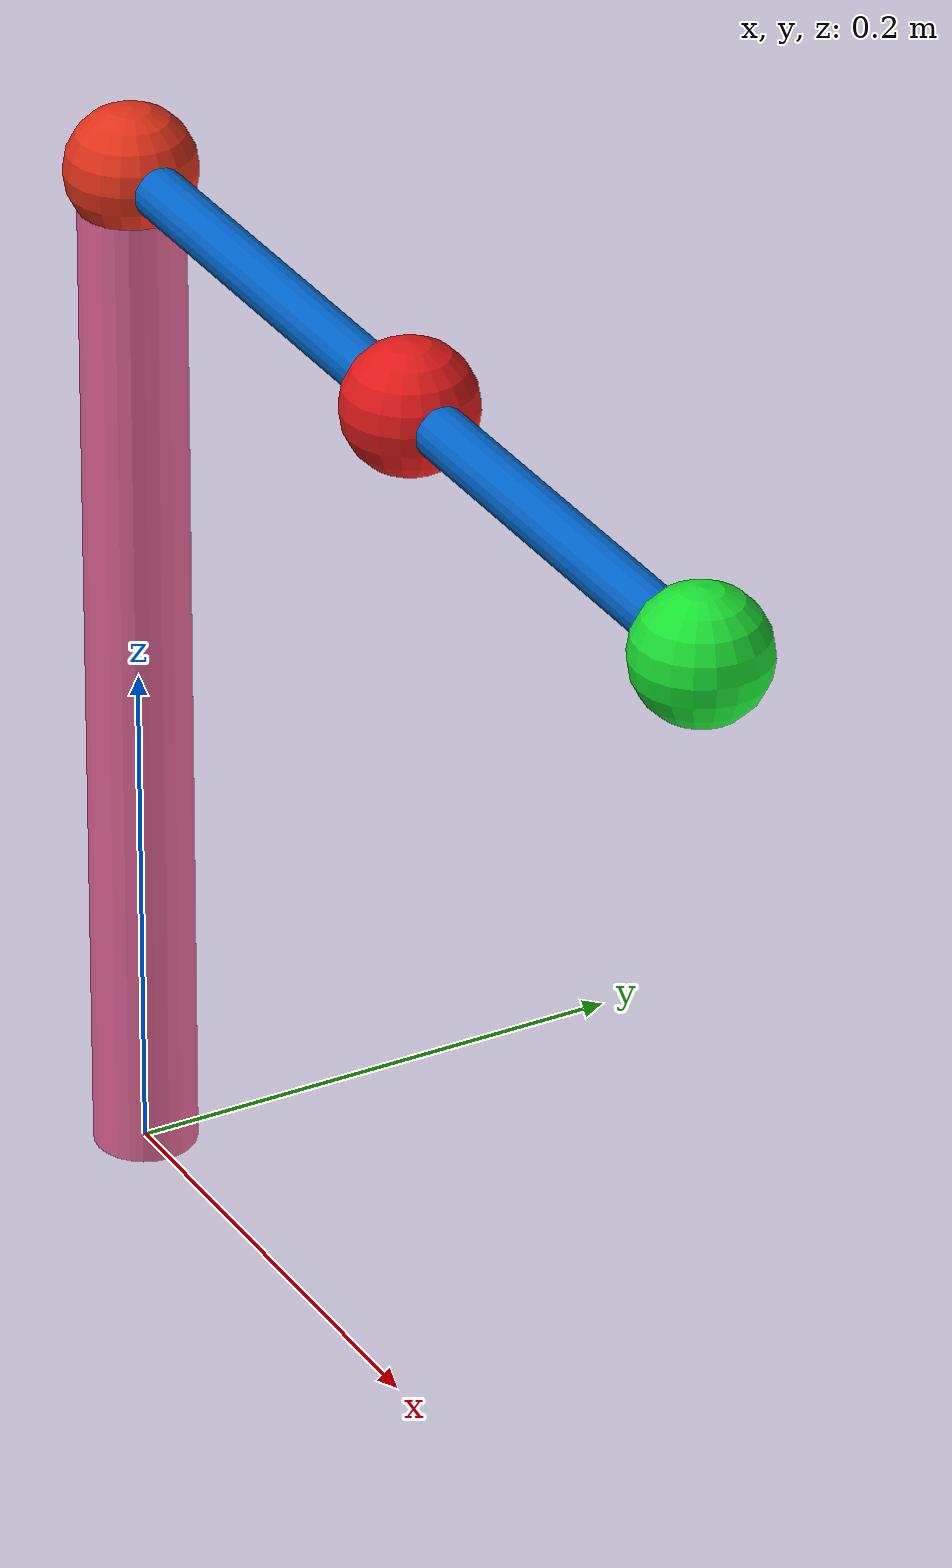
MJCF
<mujoco model="SocialReacher_targets">
	<compiler angle="radian" inertiafromgeom="true"/>
	<default>
		<joint armature="1" damping="1" limited="false"/>
		<geom contype="0" friction="1 0.1 0.1" rgba="0.7 0.7 0 1"/>
	</default>

	<option integrator="RK4" iterations="50" solver="PGS" timestep="0.003">
	</option>
	<worldbody>
		<!-- Base -->
		<geom conaffinity="0" contype="0" fromto="0 0 0 0 0 0.4" name="base" rgba="0.9 0.4 0.6 1" size=".02" type="cylinder"/> <!-- Arm --> <body name="robot_arm" pos="0 0 0.41">
			<geom name="robot_shoulder" pos="0 0 0" rgba="0.9 0.2 0.1 0.9" size=".025" type="sphere"/>
			<joint axis="0 0 1" limited="false" name="robot_shoulder_joint_z" pos="0 0 0" type="hinge"/>
			<geom fromto="0 0 0 0.2 0 0" name="robot_arm0" rgba="0.0 0.4 0.8 0.9" size=".01" type="capsule"/>

			<!-- Lower Arm -->
			<body name="robot_arm1" pos="0.21 0 0">
				<body name="robot_elbow" pos="0 0 0">
					<geom contype="0" conaffinity="0" pos="0 0 0" name="robot_arm1" rgba="0.9 0.1 0.1 0.9" size=".025" type="sphere"/>
				</body>
				<joint axis="0 0 1" limited="false" name="robot_elbow_joint" pos="0 0 0" type="hinge"/>
				<geom contype="0" conaffinity="0" fromto="0 0 0 0.2 0 0" name="robot_arm1" rgba="0.0 0.4 0.8 0.9" size=".01" type="capsule"/>
				<!-- Hand -->
				<body name="robot_hand" pos="0.2 0 0">
					<geom conaffinity="0" contype="0" pos="0 0 0" name="robot_hand" rgba="0.1 0.9 0.2 0.9" size=".025" type="sphere"/>
				</body>
			</body>
		</body>
		<!-- Target0 -->
		<body name="target_elbow" pos="0 0 0.41">
			<joint armature="0" axis="1 0 0" damping="0" name="target_elbow" pos="0 0 0" type="slide"/>
			<joint armature="0" axis="0 1 0" damping="0"  name="target_elbow" pos="0 0 0" type="slide"/>
			<geom conaffinity="0" contype="0" name="target0" pos="0 0 0" rgba="0.9 0.2 0.2 1" size=".025" type="sphere" mass="0"/>
		</body>
		<!-- Target1 -->
		<body name="target_hand" pos="0 0 0.41">
			<joint armature="0" axis="1 0 0" damping="0" name="target_hand" pos="0 0 0" type="slide"/>
			<joint armature="0" axis="0 1 0" damping="0"  name="target_hand" pos="0 0 0" type="slide"/>
			<geom conaffinity="0" contype="0" name="target_hand" pos="0 0 0" rgba="0.1 0.9 0.2 0.9" size=".025" type="sphere" mass="0"/>
		</body>
	</worldbody>
	<actuator>
		<motor gear="100.0" joint="robot_shoulder_joint_z"/>
		<motor gear="100.0" joint="robot_elbow_joint"/>
	</actuator>
</mujoco>
